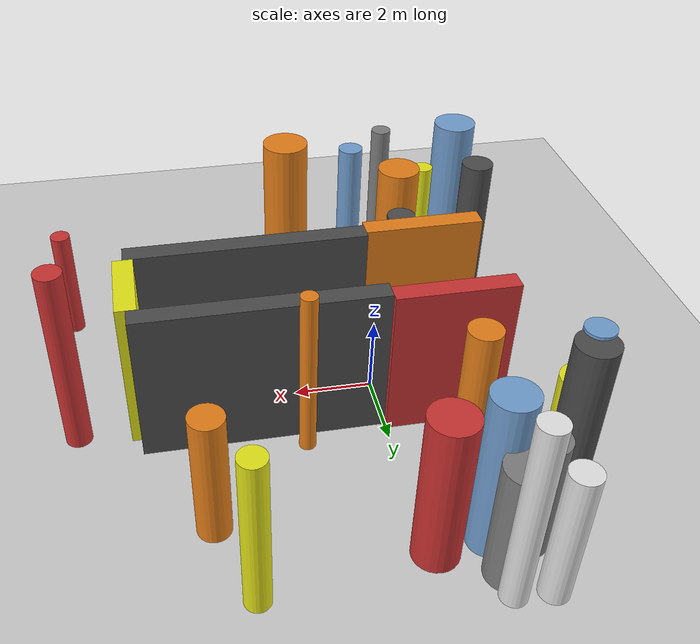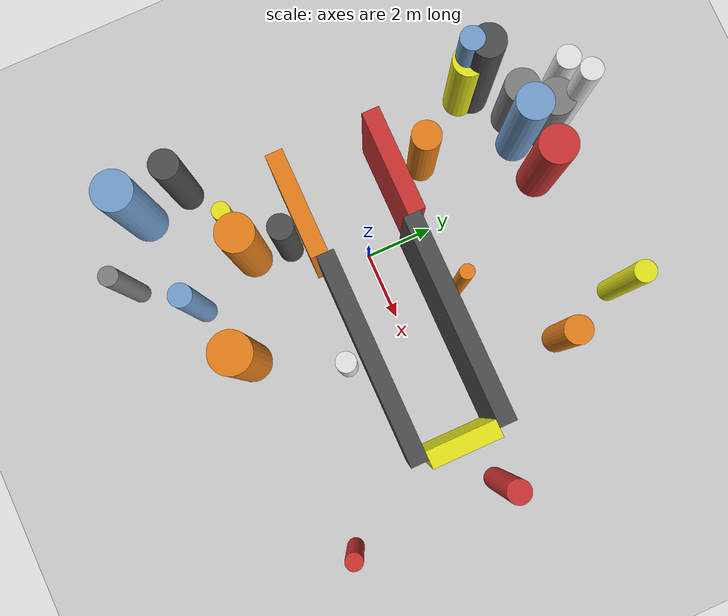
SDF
<?xml version='1.0'?>
<sdf version='1.6'>
  <world name='routeA_rl_v1__dense_recovery__rl_train__cul_de_sac_trap__000077'>
    <!-- Sun light -->
    <light name='sun' type='directional'>
      <cast_shadows>1</cast_shadows>
      <pose>0 0 10 0 0 0</pose>
      <diffuse>0.8 0.8 0.8 1</diffuse>
      <specular>0.2 0.2 0.2 1</specular>
      <attenuation>
        <range>1000</range>
        <constant>0.9</constant>
        <linear>0.01</linear>
        <quadratic>0.001</quadratic>
      </attenuation>
      <direction>-0.5 0.1 -0.9</direction>
    </light>

    <!-- Ground plane -->
    <model name='ground_plane'>
      <static>1</static>
      <link name='link'>
        <collision name='collision'>
          <geometry>
            <plane>
              <normal>0 0 1</normal>
              <size>100 100</size>
            </plane>
          </geometry>
          <surface>
            <contact>
              <collide_bitmask>65535</collide_bitmask>
              <ode/>
            </contact>
            <friction>
              <ode>
                <mu>100</mu>
                <mu2>50</mu2>
              </ode>
              <torsional><ode/></torsional>
            </friction>
            <bounce/>
          </surface>
          <max_contacts>10</max_contacts>
        </collision>
        <visual name='visual'>
          <cast_shadows>0</cast_shadows>
          <geometry>
            <plane>
              <normal>0 0 1</normal>
              <size>100 100</size>
            </plane>
          </geometry>
          <material>
            <script>
              <uri>file://media/materials/scripts/gazebo.material</uri>
              <n>Gazebo/Grey</n>
            </script>
          </material>
        </visual>
      </link>
    </model>

    <!-- Environment -->
    <magnetic_field>6e-06 2.3e-05 -4.2e-05</magnetic_field>
    <atmosphere type='adiabatic'/>
    <physics name='default_physics' default='0' type='ode'>
      <gravity>0 0 -9.8</gravity>
      <max_step_size>0.004</max_step_size>
      <real_time_factor>1</real_time_factor>
      <real_time_update_rate>250</real_time_update_rate>
    </physics>
    <scene>
      <ambient>0.4 0.4 0.4 1</ambient>
      <background>0.7 0.7 0.7 1</background>
      <shadows>1</shadows>
    </scene>
    <wind/>
    <spherical_coordinates>
      <surface_model>EARTH_WGS84</surface_model>
      <latitude_deg>0</latitude_deg>
      <longitude_deg>0</longitude_deg>
      <elevation>0</elevation>
      <heading_deg>0</heading_deg>
    </spherical_coordinates>

    <!-- ============ OBSTACLES (29) ============ -->
    <model name='trap_side_l'>
      <static>1</static>
      <link name='link'>
        <visual name='visual'>
          <geometry>
            <box>
              <size>6.0000 0.5000 4.0000</size>
            </box>
          </geometry>
          <material>
            <script>
              <n>Gazebo/DarkGrey</n>
              <uri>file://media/materials/scripts/gazebo.material</uri>
            </script>
            <ambient>0.3 0.3 0.3 1</ambient>
          </material>
        </visual>
        <collision name='collision'>
          <geometry>
            <box>
              <size>6.0000 0.5000 4.0000</size>
            </box>
          </geometry>
          <max_contacts>10</max_contacts>
          <surface>
            <contact><ode/></contact>
            <bounce/>
            <friction>
              <ode><mu>1</mu><mu2>1</mu2></ode>
              <torsional><ode/></torsional>
            </friction>
          </surface>
        </collision>
      </link>
      <pose>3.0000 -1.2500 2.0000 0 0 0.0000</pose>
    </model>

    <model name='trap_side_r'>
      <static>1</static>
      <link name='link'>
        <visual name='visual'>
          <geometry>
            <box>
              <size>6.0000 0.5000 4.0000</size>
            </box>
          </geometry>
          <material>
            <script>
              <n>Gazebo/DarkGrey</n>
              <uri>file://media/materials/scripts/gazebo.material</uri>
            </script>
            <ambient>0.3 0.3 0.3 1</ambient>
          </material>
        </visual>
        <collision name='collision'>
          <geometry>
            <box>
              <size>6.0000 0.5000 4.0000</size>
            </box>
          </geometry>
          <max_contacts>10</max_contacts>
          <surface>
            <contact><ode/></contact>
            <bounce/>
            <friction>
              <ode><mu>1</mu><mu2>1</mu2></ode>
              <torsional><ode/></torsional>
            </friction>
          </surface>
        </collision>
      </link>
      <pose>3.0000 1.2500 2.0000 0 0 0.0000</pose>
    </model>

    <model name='trap_back'>
      <static>1</static>
      <link name='link'>
        <visual name='visual'>
          <geometry>
            <box>
              <size>0.5000 2.0000 4.0000</size>
            </box>
          </geometry>
          <material>
            <script>
              <n>Gazebo/Yellow</n>
              <uri>file://media/materials/scripts/gazebo.material</uri>
            </script>
            <ambient>0.9 0.9 0.1 1</ambient>
          </material>
        </visual>
        <collision name='collision'>
          <geometry>
            <box>
              <size>0.5000 2.0000 4.0000</size>
            </box>
          </geometry>
          <max_contacts>10</max_contacts>
          <surface>
            <contact><ode/></contact>
            <bounce/>
            <friction>
              <ode><mu>1</mu><mu2>1</mu2></ode>
              <torsional><ode/></torsional>
            </friction>
          </surface>
        </collision>
      </link>
      <pose>6.0000 0.0000 2.0000 0 0 0.0000</pose>
    </model>

    <model name='trap_funnel_l'>
      <static>1</static>
      <link name='link'>
        <visual name='visual'>
          <geometry>
            <box>
              <size>3.0000 0.5000 4.0000</size>
            </box>
          </geometry>
          <material>
            <script>
              <n>Gazebo/Orange</n>
              <uri>file://media/materials/scripts/gazebo.material</uri>
            </script>
            <ambient>0.9 0.5 0.1 1</ambient>
          </material>
        </visual>
        <collision name='collision'>
          <geometry>
            <box>
              <size>3.0000 0.5000 4.0000</size>
            </box>
          </geometry>
          <max_contacts>10</max_contacts>
          <surface>
            <contact><ode/></contact>
            <bounce/>
            <friction>
              <ode><mu>1</mu><mu2>1</mu2></ode>
              <torsional><ode/></torsional>
            </friction>
          </surface>
        </collision>
      </link>
      <pose>-1.5000 -1.4000 2.0000 0 0 0.0000</pose>
    </model>

    <model name='trap_funnel_r'>
      <static>1</static>
      <link name='link'>
        <visual name='visual'>
          <geometry>
            <box>
              <size>3.0000 0.5000 4.0000</size>
            </box>
          </geometry>
          <material>
            <script>
              <n>Gazebo/Red</n>
              <uri>file://media/materials/scripts/gazebo.material</uri>
            </script>
            <ambient>0.8 0.2 0.2 1</ambient>
          </material>
        </visual>
        <collision name='collision'>
          <geometry>
            <box>
              <size>3.0000 0.5000 4.0000</size>
            </box>
          </geometry>
          <max_contacts>10</max_contacts>
          <surface>
            <contact><ode/></contact>
            <bounce/>
            <friction>
              <ode><mu>1</mu><mu2>1</mu2></ode>
              <torsional><ode/></torsional>
            </friction>
          </surface>
        </collision>
      </link>
      <pose>-1.5000 1.4000 2.0000 0 0 0.0000</pose>
    </model>

    <model name='trap_scatter_0'>
      <static>1</static>
      <link name='link'>
        <visual name='visual'>
          <geometry>
            <cylinder>
              <radius>0.3171</radius>
              <length>4.9926</length>
            </cylinder>
          </geometry>
          <material>
            <script>
              <n>Gazebo/White</n>
              <uri>file://media/materials/scripts/gazebo.material</uri>
            </script>
            <ambient>0.9 0.9 0.9 1</ambient>
          </material>
        </visual>
        <collision name='collision'>
          <geometry>
            <cylinder>
              <radius>0.3171</radius>
              <length>4.9926</length>
            </cylinder>
          </geometry>
          <max_contacts>10</max_contacts>
          <surface>
            <contact><ode/></contact>
            <bounce/>
            <friction>
              <ode><mu>1</mu><mu2>1</mu2></ode>
              <torsional><ode/></torsional>
            </friction>
          </surface>
        </collision>
      </link>
      <pose>-1.3696 6.9008 2.4963 0 0 0.0000</pose>
    </model>

    <model name='trap_scatter_1'>
      <static>1</static>
      <link name='link'>
        <visual name='visual'>
          <geometry>
            <cylinder>
              <radius>0.4721</radius>
              <length>3.6390</length>
            </cylinder>
          </geometry>
          <material>
            <script>
              <n>Gazebo/Yellow</n>
              <uri>file://media/materials/scripts/gazebo.material</uri>
            </script>
            <ambient>0.9 0.9 0.1 1</ambient>
          </material>
        </visual>
        <collision name='collision'>
          <geometry>
            <cylinder>
              <radius>0.4721</radius>
              <length>3.6390</length>
            </cylinder>
          </geometry>
          <max_contacts>10</max_contacts>
          <surface>
            <contact><ode/></contact>
            <bounce/>
            <friction>
              <ode><mu>1</mu><mu2>1</mu2></ode>
              <torsional><ode/></torsional>
            </friction>
          </surface>
        </collision>
      </link>
      <pose>-3.2498 4.4561 1.8195 0 0 0.0000</pose>
    </model>

    <model name='trap_scatter_2'>
      <static>1</static>
      <link name='link'>
        <visual name='visual'>
          <geometry>
            <cylinder>
              <radius>0.5773</radius>
              <length>4.4967</length>
            </cylinder>
          </geometry>
          <material>
            <script>
              <n>Gazebo/Blue</n>
              <uri>file://media/materials/scripts/gazebo.material</uri>
            </script>
            <ambient>0.447 0.624 0.812 1</ambient>
          </material>
        </visual>
        <collision name='collision'>
          <geometry>
            <cylinder>
              <radius>0.5773</radius>
              <length>4.4967</length>
            </cylinder>
          </geometry>
          <max_contacts>10</max_contacts>
          <surface>
            <contact><ode/></contact>
            <bounce/>
            <friction>
              <ode><mu>1</mu><mu2>1</mu2></ode>
              <torsional><ode/></torsional>
            </friction>
          </surface>
        </collision>
      </link>
      <pose>-3.6514 -5.6176 2.2484 0 0 0.0000</pose>
    </model>

    <model name='trap_scatter_3'>
      <static>1</static>
      <link name='link'>
        <visual name='visual'>
          <geometry>
            <cylinder>
              <radius>0.3282</radius>
              <length>4.9883</length>
            </cylinder>
          </geometry>
          <material>
            <script>
              <n>Gazebo/Red</n>
              <uri>file://media/materials/scripts/gazebo.material</uri>
            </script>
            <ambient>0.8 0.2 0.2 1</ambient>
          </material>
        </visual>
        <collision name='collision'>
          <geometry>
            <cylinder>
              <radius>0.3282</radius>
              <length>4.9883</length>
            </cylinder>
          </geometry>
          <max_contacts>10</max_contacts>
          <surface>
            <contact><ode/></contact>
            <bounce/>
            <friction>
              <ode><mu>1</mu><mu2>1</mu2></ode>
              <torsional><ode/></torsional>
            </friction>
          </surface>
        </collision>
      </link>
      <pose>7.5354 0.6687 2.4942 0 0 0.0000</pose>
    </model>

    <model name='trap_scatter_4'>
      <static>1</static>
      <link name='link'>
        <visual name='visual'>
          <geometry>
            <cylinder>
              <radius>0.3657</radius>
              <length>3.8358</length>
            </cylinder>
          </geometry>
          <material>
            <script>
              <n>Gazebo/DarkGrey</n>
              <uri>file://media/materials/scripts/gazebo.material</uri>
            </script>
            <ambient>0.3 0.3 0.3 1</ambient>
          </material>
        </visual>
        <collision name='collision'>
          <geometry>
            <cylinder>
              <radius>0.3657</radius>
              <length>3.8358</length>
            </cylinder>
          </geometry>
          <max_contacts>10</max_contacts>
          <surface>
            <contact><ode/></contact>
            <bounce/>
            <friction>
              <ode><mu>1</mu><mu2>1</mu2></ode>
              <torsional><ode/></torsional>
            </friction>
          </surface>
        </collision>
      </link>
      <pose>-1.1350 -2.0433 1.9179 0 0 0.0000</pose>
    </model>

    <model name='trap_scatter_5'>
      <static>1</static>
      <link name='link'>
        <visual name='visual'>
          <geometry>
            <cylinder>
              <radius>0.5564</radius>
              <length>4.0713</length>
            </cylinder>
          </geometry>
          <material>
            <script>
              <n>Gazebo/Red</n>
              <uri>file://media/materials/scripts/gazebo.material</uri>
            </script>
            <ambient>0.8 0.2 0.2 1</ambient>
          </material>
        </visual>
        <collision name='collision'>
          <geometry>
            <cylinder>
              <radius>0.5564</radius>
              <length>4.0713</length>
            </cylinder>
          </geometry>
          <max_contacts>10</max_contacts>
          <surface>
            <contact><ode/></contact>
            <bounce/>
            <friction>
              <ode><mu>1</mu><mu2>1</mu2></ode>
              <torsional><ode/></torsional>
            </friction>
          </surface>
        </collision>
      </link>
      <pose>-0.0929 5.5526 2.0357 0 0 0.0000</pose>
    </model>

    <model name='trap_scatter_6'>
      <static>1</static>
      <link name='link'>
        <visual name='visual'>
          <geometry>
            <cylinder>
              <radius>0.2549</radius>
              <length>3.0419</length>
            </cylinder>
          </geometry>
          <material>
            <script>
              <n>Gazebo/Red</n>
              <uri>file://media/materials/scripts/gazebo.material</uri>
            </script>
            <ambient>0.8 0.2 0.2 1</ambient>
          </material>
        </visual>
        <collision name='collision'>
          <geometry>
            <cylinder>
              <radius>0.2549</radius>
              <length>3.0419</length>
            </cylinder>
          </geometry>
          <max_contacts>10</max_contacts>
          <surface>
            <contact><ode/></contact>
            <bounce/>
            <friction>
              <ode><mu>1</mu><mu2>1</mu2></ode>
              <torsional><ode/></torsional>
            </friction>
          </surface>
        </collision>
      </link>
      <pose>7.6515 -3.8589 1.5210 0 0 0.0000</pose>
    </model>

    <model name='trap_scatter_7'>
      <static>1</static>
      <link name='link'>
        <visual name='visual'>
          <geometry>
            <cylinder>
              <radius>0.5223</radius>
              <length>4.3258</length>
            </cylinder>
          </geometry>
          <material>
            <script>
              <n>Gazebo/Blue</n>
              <uri>file://media/materials/scripts/gazebo.material</uri>
            </script>
            <ambient>0.447 0.624 0.812 1</ambient>
          </material>
        </visual>
        <collision name='collision'>
          <geometry>
            <cylinder>
              <radius>0.5223</radius>
              <length>4.3258</length>
            </cylinder>
          </geometry>
          <max_contacts>10</max_contacts>
          <surface>
            <contact><ode/></contact>
            <bounce/>
            <friction>
              <ode><mu>1</mu><mu2>1</mu2></ode>
              <torsional><ode/></torsional>
            </friction>
          </surface>
        </collision>
      </link>
      <pose>-1.3390 5.4061 2.1629 0 0 0.0000</pose>
    </model>

    <model name='trap_scatter_8'>
      <static>1</static>
      <link name='link'>
        <visual name='visual'>
          <geometry>
            <cylinder>
              <radius>0.2948</radius>
              <length>3.2075</length>
            </cylinder>
          </geometry>
          <material>
            <script>
              <n>Gazebo/White</n>
              <uri>file://media/materials/scripts/gazebo.material</uri>
            </script>
            <ambient>0.9 0.9 0.9 1</ambient>
          </material>
        </visual>
        <collision name='collision'>
          <geometry>
            <cylinder>
              <radius>0.2948</radius>
              <length>3.2075</length>
            </cylinder>
          </geometry>
          <max_contacts>10</max_contacts>
          <surface>
            <contact><ode/></contact>
            <bounce/>
            <friction>
              <ode><mu>1</mu><mu2>1</mu2></ode>
              <torsional><ode/></torsional>
            </friction>
          </surface>
        </collision>
      </link>
      <pose>2.7936 -1.9172 1.6037 0 0 0.0000</pose>
    </model>

    <model name='trap_scatter_9'>
      <static>1</static>
      <link name='link'>
        <visual name='visual'>
          <geometry>
            <cylinder>
              <radius>0.5490</radius>
              <length>3.2473</length>
            </cylinder>
          </geometry>
          <material>
            <script>
              <n>Gazebo/Grey</n>
              <uri>file://media/materials/scripts/gazebo.material</uri>
            </script>
            <ambient>0.5 0.5 0.5 1</ambient>
          </material>
        </visual>
        <collision name='collision'>
          <geometry>
            <cylinder>
              <radius>0.5490</radius>
              <length>3.2473</length>
            </cylinder>
          </geometry>
          <max_contacts>10</max_contacts>
          <surface>
            <contact><ode/></contact>
            <bounce/>
            <friction>
              <ode><mu>1</mu><mu2>1</mu2></ode>
              <torsional><ode/></torsional>
            </friction>
          </surface>
        </collision>
      </link>
      <pose>-1.4572 6.3216 1.6236 0 0 0.0000</pose>
    </model>

    <model name='trap_scatter_10'>
      <static>1</static>
      <link name='link'>
        <visual name='visual'>
          <geometry>
            <cylinder>
              <radius>0.2083</radius>
              <length>4.5241</length>
            </cylinder>
          </geometry>
          <material>
            <script>
              <n>Gazebo/Orange</n>
              <uri>file://media/materials/scripts/gazebo.material</uri>
            </script>
            <ambient>0.9 0.5 0.1 1</ambient>
          </material>
        </visual>
        <collision name='collision'>
          <geometry>
            <cylinder>
              <radius>0.2083</radius>
              <length>4.5241</length>
            </cylinder>
          </geometry>
          <max_contacts>10</max_contacts>
          <surface>
            <contact><ode/></contact>
            <bounce/>
            <friction>
              <ode><mu>1</mu><mu2>1</mu2></ode>
              <torsional><ode/></torsional>
            </friction>
          </surface>
        </collision>
      </link>
      <pose>2.0288 1.8575 2.2621 0 0 0.0000</pose>
    </model>

    <model name='trap_scatter_11'>
      <static>1</static>
      <link name='link'>
        <visual name='visual'>
          <geometry>
            <cylinder>
              <radius>0.3293</radius>
              <length>4.2357</length>
            </cylinder>
          </geometry>
          <material>
            <script>
              <n>Gazebo/Blue</n>
              <uri>file://media/materials/scripts/gazebo.material</uri>
            </script>
            <ambient>0.447 0.624 0.812 1</ambient>
          </material>
        </visual>
        <collision name='collision'>
          <geometry>
            <cylinder>
              <radius>0.3293</radius>
              <length>4.2357</length>
            </cylinder>
          </geometry>
          <max_contacts>10</max_contacts>
          <surface>
            <contact><ode/></contact>
            <bounce/>
            <friction>
              <ode><mu>1</mu><mu2>1</mu2></ode>
              <torsional><ode/></torsional>
            </friction>
          </surface>
        </collision>
      </link>
      <pose>-0.4795 -5.1108 2.1178 0 0 0.0000</pose>
    </model>

    <model name='trap_scatter_12'>
      <static>1</static>
      <link name='link'>
        <visual name='visual'>
          <geometry>
            <cylinder>
              <radius>0.2771</radius>
              <length>3.9218</length>
            </cylinder>
          </geometry>
          <material>
            <script>
              <n>Gazebo/Grey</n>
              <uri>file://media/materials/scripts/gazebo.material</uri>
            </script>
            <ambient>0.5 0.5 0.5 1</ambient>
          </material>
        </visual>
        <collision name='collision'>
          <geometry>
            <cylinder>
              <radius>0.2771</radius>
              <length>3.9218</length>
            </cylinder>
          </geometry>
          <max_contacts>10</max_contacts>
          <surface>
            <contact><ode/></contact>
            <bounce/>
            <friction>
              <ode><mu>1</mu><mu2>1</mu2></ode>
              <torsional><ode/></torsional>
            </friction>
          </surface>
        </collision>
      </link>
      <pose>-1.7695 -6.6653 1.9609 0 0 0.0000</pose>
    </model>

    <model name='trap_scatter_13'>
      <static>1</static>
      <link name='link'>
        <visual name='visual'>
          <geometry>
            <cylinder>
              <radius>0.4807</radius>
              <length>4.8731</length>
            </cylinder>
          </geometry>
          <material>
            <script>
              <n>Gazebo/DarkGrey</n>
              <uri>file://media/materials/scripts/gazebo.material</uri>
            </script>
            <ambient>0.3 0.3 0.3 1</ambient>
          </material>
        </visual>
        <collision name='collision'>
          <geometry>
            <cylinder>
              <radius>0.4807</radius>
              <length>4.8731</length>
            </cylinder>
          </geometry>
          <max_contacts>10</max_contacts>
          <surface>
            <contact><ode/></contact>
            <bounce/>
            <friction>
              <ode><mu>1</mu><mu2>1</mu2></ode>
              <torsional><ode/></torsional>
            </friction>
          </surface>
        </collision>
      </link>
      <pose>-3.1676 4.8501 2.4365 0 0 0.0000</pose>
    </model>

    <model name='trap_scatter_15'>
      <static>1</static>
      <link name='link'>
        <visual name='visual'>
          <geometry>
            <cylinder>
              <radius>0.2491</radius>
              <length>4.4941</length>
            </cylinder>
          </geometry>
          <material>
            <script>
              <n>Gazebo/Yellow</n>
              <uri>file://media/materials/scripts/gazebo.material</uri>
            </script>
            <ambient>0.9 0.9 0.1 1</ambient>
          </material>
        </visual>
        <collision name='collision'>
          <geometry>
            <cylinder>
              <radius>0.2491</radius>
              <length>4.4941</length>
            </cylinder>
          </geometry>
          <max_contacts>10</max_contacts>
          <surface>
            <contact><ode/></contact>
            <bounce/>
            <friction>
              <ode><mu>1</mu><mu2>1</mu2></ode>
              <torsional><ode/></torsional>
            </friction>
          </surface>
        </collision>
      </link>
      <pose>-2.0091 -3.2625 2.2471 0 0 0.0000</pose>
    </model>

    <model name='trap_scatter_16'>
      <static>1</static>
      <link name='link'>
        <visual name='visual'>
          <geometry>
            <cylinder>
              <radius>0.5949</radius>
              <length>4.9015</length>
            </cylinder>
          </geometry>
          <material>
            <script>
              <n>Gazebo/Orange</n>
              <uri>file://media/materials/scripts/gazebo.material</uri>
            </script>
            <ambient>0.9 0.5 0.1 1</ambient>
          </material>
        </visual>
        <collision name='collision'>
          <geometry>
            <cylinder>
              <radius>0.5949</radius>
              <length>4.9015</length>
            </cylinder>
          </geometry>
          <max_contacts>10</max_contacts>
          <surface>
            <contact><ode/></contact>
            <bounce/>
            <friction>
              <ode><mu>1</mu><mu2>1</mu2></ode>
              <torsional><ode/></torsional>
            </friction>
          </surface>
        </collision>
      </link>
      <pose>1.4830 -4.4544 2.4508 0 0 0.0000</pose>
    </model>

    <model name='trap_scatter_17'>
      <static>1</static>
      <link name='link'>
        <visual name='visual'>
          <geometry>
            <cylinder>
              <radius>0.3402</radius>
              <length>4.9436</length>
            </cylinder>
          </geometry>
          <material>
            <script>
              <n>Gazebo/Blue</n>
              <uri>file://media/materials/scripts/gazebo.material</uri>
            </script>
            <ambient>0.447 0.624 0.812 1</ambient>
          </material>
        </visual>
        <collision name='collision'>
          <geometry>
            <cylinder>
              <radius>0.3402</radius>
              <length>4.9436</length>
            </cylinder>
          </geometry>
          <max_contacts>10</max_contacts>
          <surface>
            <contact><ode/></contact>
            <bounce/>
            <friction>
              <ode><mu>1</mu><mu2>1</mu2></ode>
              <torsional><ode/></torsional>
            </friction>
          </surface>
        </collision>
      </link>
      <pose>-3.3799 4.4656 2.4718 0 0 0.0000</pose>
    </model>

    <model name='trap_scatter_18'>
      <static>1</static>
      <link name='link'>
        <visual name='visual'>
          <geometry>
            <cylinder>
              <radius>0.3099</radius>
              <length>4.2771</length>
            </cylinder>
          </geometry>
          <material>
            <script>
              <n>Gazebo/Yellow</n>
              <uri>file://media/materials/scripts/gazebo.material</uri>
            </script>
            <ambient>0.9 0.9 0.1 1</ambient>
          </material>
        </visual>
        <collision name='collision'>
          <geometry>
            <cylinder>
              <radius>0.3099</radius>
              <length>4.2771</length>
            </cylinder>
          </geometry>
          <max_contacts>10</max_contacts>
          <surface>
            <contact><ode/></contact>
            <bounce/>
            <friction>
              <ode><mu>1</mu><mu2>1</mu2></ode>
              <torsional><ode/></torsional>
            </friction>
          </surface>
        </collision>
      </link>
      <pose>3.8831 6.0932 2.1386 0 0 0.0000</pose>
    </model>

    <model name='trap_scatter_19'>
      <static>1</static>
      <link name='link'>
        <visual name='visual'>
          <geometry>
            <cylinder>
              <radius>0.4238</radius>
              <length>3.5975</length>
            </cylinder>
          </geometry>
          <material>
            <script>
              <n>Gazebo/Orange</n>
              <uri>file://media/materials/scripts/gazebo.material</uri>
            </script>
            <ambient>0.9 0.5 0.1 1</ambient>
          </material>
        </visual>
        <collision name='collision'>
          <geometry>
            <cylinder>
              <radius>0.4238</radius>
              <length>3.5975</length>
            </cylinder>
          </geometry>
          <max_contacts>10</max_contacts>
          <surface>
            <contact><ode/></contact>
            <bounce/>
            <friction>
              <ode><mu>1</mu><mu2>1</mu2></ode>
              <torsional><ode/></torsional>
            </friction>
          </surface>
        </collision>
      </link>
      <pose>-1.8454 2.5485 1.7987 0 0 0.0000</pose>
    </model>

    <model name='trap_scatter_20'>
      <static>1</static>
      <link name='link'>
        <visual name='visual'>
          <geometry>
            <cylinder>
              <radius>0.4291</radius>
              <length>3.9312</length>
            </cylinder>
          </geometry>
          <material>
            <script>
              <n>Gazebo/DarkGrey</n>
              <uri>file://media/materials/scripts/gazebo.material</uri>
            </script>
            <ambient>0.3 0.3 0.3 1</ambient>
          </material>
        </visual>
        <collision name='collision'>
          <geometry>
            <cylinder>
              <radius>0.4291</radius>
              <length>3.9312</length>
            </cylinder>
          </geometry>
          <max_contacts>10</max_contacts>
          <surface>
            <contact><ode/></contact>
            <bounce/>
            <friction>
              <ode><mu>1</mu><mu2>1</mu2></ode>
              <torsional><ode/></torsional>
            </friction>
          </surface>
        </collision>
      </link>
      <pose>-3.9139 -4.1819 1.9656 0 0 0.0000</pose>
    </model>

    <model name='trap_scatter_21'>
      <static>1</static>
      <link name='link'>
        <visual name='visual'>
          <geometry>
            <cylinder>
              <radius>0.5396</radius>
              <length>4.5783</length>
            </cylinder>
          </geometry>
          <material>
            <script>
              <n>Gazebo/Orange</n>
              <uri>file://media/materials/scripts/gazebo.material</uri>
            </script>
            <ambient>0.9 0.5 0.1 1</ambient>
          </material>
        </visual>
        <collision name='collision'>
          <geometry>
            <cylinder>
              <radius>0.5396</radius>
              <length>4.5783</length>
            </cylinder>
          </geometry>
          <max_contacts>10</max_contacts>
          <surface>
            <contact><ode/></contact>
            <bounce/>
            <friction>
              <ode><mu>1</mu><mu2>1</mu2></ode>
              <torsional><ode/></torsional>
            </friction>
          </surface>
        </collision>
      </link>
      <pose>-1.3240 -3.1649 2.2891 0 0 0.0000</pose>
    </model>

    <model name='trap_scatter_22'>
      <static>1</static>
      <link name='link'>
        <visual name='visual'>
          <geometry>
            <cylinder>
              <radius>0.4083</radius>
              <length>3.4424</length>
            </cylinder>
          </geometry>
          <material>
            <script>
              <n>Gazebo/Orange</n>
              <uri>file://media/materials/scripts/gazebo.material</uri>
            </script>
            <ambient>0.9 0.5 0.1 1</ambient>
          </material>
        </visual>
        <collision name='collision'>
          <geometry>
            <cylinder>
              <radius>0.4083</radius>
              <length>3.4424</length>
            </cylinder>
          </geometry>
          <max_contacts>10</max_contacts>
          <surface>
            <contact><ode/></contact>
            <bounce/>
            <friction>
              <ode><mu>1</mu><mu2>1</mu2></ode>
              <torsional><ode/></torsional>
            </friction>
          </surface>
        </collision>
      </link>
      <pose>4.5571 4.0565 1.7212 0 0 0.0000</pose>
    </model>

    <model name='trap_scatter_23'>
      <static>1</static>
      <link name='link'>
        <visual name='visual'>
          <geometry>
            <cylinder>
              <radius>0.3517</radius>
              <length>3.6190</length>
            </cylinder>
          </geometry>
          <material>
            <script>
              <n>Gazebo/White</n>
              <uri>file://media/materials/scripts/gazebo.material</uri>
            </script>
            <ambient>0.9 0.9 0.9 1</ambient>
          </material>
        </visual>
        <collision name='collision'>
          <geometry>
            <cylinder>
              <radius>0.3517</radius>
              <length>3.6190</length>
            </cylinder>
          </geometry>
          <max_contacts>10</max_contacts>
          <surface>
            <contact><ode/></contact>
            <bounce/>
            <friction>
              <ode><mu>1</mu><mu2>1</mu2></ode>
              <torsional><ode/></torsional>
            </friction>
          </surface>
        </collision>
      </link>
      <pose>-2.2385 6.9528 1.8095 0 0 0.0000</pose>
    </model>

    <model name='trap_scatter_24'>
      <static>1</static>
      <link name='link'>
        <visual name='visual'>
          <geometry>
            <cylinder>
              <radius>0.5029</radius>
              <length>3.1720</length>
            </cylinder>
          </geometry>
          <material>
            <script>
              <n>Gazebo/Grey</n>
              <uri>file://media/materials/scripts/gazebo.material</uri>
            </script>
            <ambient>0.5 0.5 0.5 1</ambient>
          </material>
        </visual>
        <collision name='collision'>
          <geometry>
            <cylinder>
              <radius>0.5029</radius>
              <length>3.1720</length>
            </cylinder>
          </geometry>
          <max_contacts>10</max_contacts>
          <surface>
            <contact><ode/></contact>
            <bounce/>
            <friction>
              <ode><mu>1</mu><mu2>1</mu2></ode>
              <torsional><ode/></torsional>
            </friction>
          </surface>
        </collision>
      </link>
      <pose>-2.1402 5.5949 1.5860 0 0 0.0000</pose>
    </model>

    <!-- GUI camera -->
    <gui fullscreen='0'>
      <camera name='user_camera'>
        <pose>-15 0 18 0 0.85 0.15</pose>
        <view_controller>orbit</view_controller>
        <projection_type>perspective</projection_type>
      </camera>
    </gui>
  </world>
</sdf>
